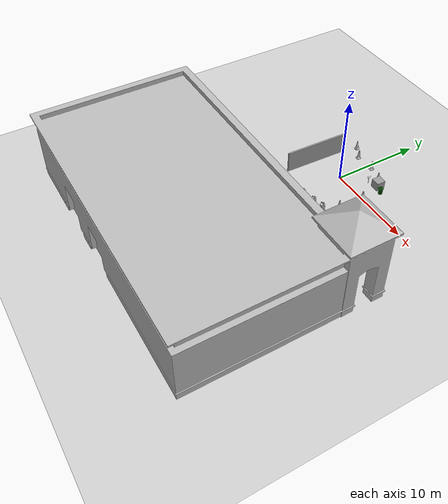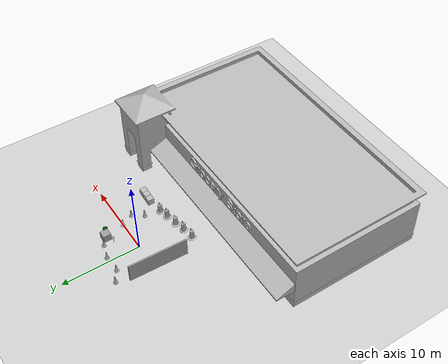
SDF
<sdf version="1.7">
 <world name="default">
  <light name="sun" type="directional">
   <pose>0 0 10 0 -0 0</pose>
   <diffuse>0.8 0.8 0.8 1</diffuse>
   <specular>0.2 0.2 0.2 1</specular>
   <attenuation>
    <range>1000</range>
    <constant>0.9</constant>
    <linear>0.01</linear>
    <quadratic>0.001</quadratic>
   </attenuation>
   <direction>-0.5 0.1 -0.9</direction>
   <spot><inner_angle>0</inner_angle><outer_angle>0</outer_angle><falloff>0</falloff></spot>
  </light>
  <model name="ground_plane">
   <static>1</static>
   <link name="link">
    <collision name="collision">
     <geometry><plane><normal>0 0 1</normal><size>100 100</size></plane></geometry>
     <surface>
      <contact><collide_bitmask>65535</collide_bitmask></contact>
      <friction><ode><mu>100</mu><mu2>50</mu2></ode></friction>
     </surface>
    </collision>
    <visual name="visual">
     <cast_shadows>0</cast_shadows>
     <geometry><plane><normal>0 0 1</normal><size>100 100</size></plane></geometry>
     <material>
      <script><uri>file://media/materials/scripts/gazebo.material</uri><name>Gazebo/Grey</name></script>
     </material>
    </visual>
   </link>
  </model>
  <gravity>0 0 -9.8</gravity>
  <magnetic_field>6e-06 2.3e-05 -4.2e-05</magnetic_field>
  <atmosphere type="adiabatic"/>
  <physics type="ode">
   <max_step_size>0.001</max_step_size>
   <real_time_factor>1</real_time_factor>
   <real_time_update_rate>1000</real_time_update_rate>
  </physics>
  <scene><ambient>0.4 0.4 0.4 1</ambient><background>0.7 0.7 0.7 1</background><shadows>1</shadows></scene>
  <spherical_coordinates>
   <surface_model>EARTH_WGS84</surface_model>
   <latitude_deg>0</latitude_deg>
   <longitude_deg>0</longitude_deg>
   <elevation>0</elevation>
   <heading_deg>0</heading_deg>
  </spherical_coordinates>
  <model name="unit_box">
   <pose>3.28371 2.66326 0.499995 -1e-05 0 -1e-06</pose>
   <link name="link">
    <inertial>
     <mass>1</mass>
     <inertia>
      <ixx>0.166667</ixx>
      <ixy>0</ixy>
      <ixz>0</ixz>
      <iyy>0.166667</iyy>
      <iyz>0</iyz>
      <izz>0.166667</izz>
     </inertia>
    </inertial>
    <collision name="collision"><geometry><box><size>1 1 1</size></box></geometry></collision>
    <visual name="visual">
     <geometry><box><size>1 1 1</size></box></geometry>
     <material>
      <script><name>Gazebo/Grey</name><uri>file://media/materials/scripts/gazebo.material</uri></script>
     </material>
    </visual>
   </link>
  </model>
  <model name="Mailbox">
   <link name="link">
    <collision name="collision">
     <geometry><mesh><uri>model://mailbox/meshes/mailbox.dae</uri></mesh></geometry>
    </collision>
    <visual name="visual">
     <geometry><mesh><uri>model://mailbox/meshes/mailbox.dae</uri></mesh></geometry>
     <material>
      <script>
       <uri>model://mailbox/materials/scripts</uri>
       <uri>model://mailbox/materials/textures</uri>
       <name>Mailbox/Diffuse</name>
      </script>
     </material>
    </visual>
    <inertial>
     <inertia><ixx>1</ixx><ixy>0</ixy><ixz>0</ixz><iyy>1</iyy><iyz>0</iyz><izz>1</izz></inertia>
     <mass>1</mass>
    </inertial>
   </link>
   <pose>2.25434 2.16385 -1e-05 -6e-06 -0 0</pose>
  </model>
  <model name="first_2015_trash_can">
   <link name="link">
    <inertial>
     <pose>0 0 0.3683 0 -0 0</pose>
     <mass>4.83076</mass>
     <inertia>
      <ixx>0.281534</ixx>
      <ixy>0</ixy>
      <ixz>0</ixz>
      <iyy>0.281534</iyy>
      <iyz>0</iyz>
      <izz>0.126223</izz>
     </inertia>
    </inertial>
    <visual name="visual">
     <geometry><mesh><uri>model://first_2015_trash_can/meshes/trash_can.dae</uri></mesh></geometry>
    </visual>
    <collision name="collision">
     <geometry><mesh><uri>model://first_2015_trash_can/meshes/trash_can.dae</uri></mesh></geometry>
    </collision>
   </link>
   <pose>4.21054 2.25859 1e-06 7e-06 -7e-06 -0.00235</pose>
  </model>
  <model name="grey_wall">
   <static>1</static>
   <link name="link">
    <pose>0 0 1.4 0 -0 0</pose>
    <collision name="collision"><geometry><box><size>7.5 0.2 2.8</size></box></geometry></collision>
    <visual name="visual">
     <cast_shadows>0</cast_shadows>
     <geometry><box><size>7.5 0.2 2.8</size></box></geometry>
     <material>
      <script>
       <uri>model://grey_wall/materials/scripts</uri>
       <uri>model://grey_wall/materials/textures</uri>
       <name>vrc/grey_wall</name>
      </script>
     </material>
    </visual>
   </link>
   <pose>-3.78977 -0.554598 -0.345897 0 -0 1.53879</pose>
  </model>
  <model name="grocery_store">
   <static>1</static>
   <link name="link">
    <collision name="collision">
     <pose>0 0 4.04605 0 -0 0</pose>
     <geometry><box><size>32.1985 17.5425 8.09209</size></box></geometry>
    </collision>
    <visual name="visual">
     <pose>0 -1.96155 0 0 -0 0</pose>
     <geometry><mesh><uri>model://grocery_store/meshes/grocery_store.dae</uri></mesh></geometry>
    </visual>
   </link>
   <pose>-0.819565 -18.8877 0 0 -0 0</pose>
  </model>
  <model name="number1">
   <pose>7.0827 -4.59984 0.4 0 -0 0</pose>
   <static>1</static>
   <link name="link">
    <visual name="visual">
     <geometry><mesh><uri>model://number1/meshes/number.dae</uri></mesh></geometry>
     <material>
      <script>
       <uri>model://number1/materials/scripts</uri>
       <uri>model://number1/materials/textures</uri>
       <name>Number/One</name>
      </script>
     </material>
    </visual>
   </link>
  </model>
  <model name="number2">
   <pose>6.28028 -4.56015 0.4 0 -0 0</pose>
   <static>1</static>
   <link name="link">
    <visual name="visual">
     <geometry><mesh><uri>model://number1/meshes/number.dae</uri></mesh></geometry>
     <material>
      <script>
       <uri>model://number2/materials/scripts</uri>
       <uri>model://number2/materials/textures</uri>
       <name>Number/Two</name>
      </script>
     </material>
    </visual>
   </link>
  </model>
  <model name="number4">
   <pose>5.44622 -4.51949 0.4 0 -0 0</pose>
   <static>1</static>
   <link name="link">
    <visual name="visual">
     <geometry><mesh><uri>model://number1/meshes/number.dae</uri></mesh></geometry>
     <material>
      <script>
       <uri>model://number4/materials/scripts</uri>
       <uri>model://number4/materials/textures</uri>
       <name>Number/Four</name>
      </script>
     </material>
    </visual>
   </link>
  </model>
  <model name="Construction Cone">
   <link name="link">
    <collision name="collision">
     <geometry>
      <mesh><scale>10 10 10</scale><uri>model://construction_cone/meshes/construction_cone.dae</uri></mesh>
     </geometry>
    </collision>
    <visual name="visual">
     <geometry>
      <mesh><scale>10 10 10</scale><uri>model://construction_cone/meshes/construction_cone.dae</uri></mesh>
     </geometry>
    </visual>
    <inertial>
     <inertia><ixx>1</ixx><ixy>0</ixy><ixz>0</ixz><iyy>1</iyy><iyz>0</iyz><izz>1</izz></inertia>
     <mass>1</mass>
    </inertial>
   </link>
   <pose>3.80395 -2.87568 -0 0 -1e-06 0</pose>
  </model>
  <model name="Construction Barrel">
   <link name="link">
    <inertial>
     <pose>0 0 0.4 0 -0 0</pose>
     <mass>500</mass>
     <inertia><ixx>51.2096</ixx><iyy>51.2096</iyy><izz>25</izz><ixy>0</ixy><ixz>0</ixz><iyz>0</iyz></inertia>
    </inertial>
    <collision name="collision">
     <geometry><mesh><uri>model://construction_barrel/meshes/construction_barrel.dae</uri></mesh></geometry>
    </collision>
    <visual name="visual">
     <geometry><mesh><uri>model://construction_barrel/meshes/construction_barrel.dae</uri></mesh></geometry>
    </visual>
   </link>
   <pose>3.40511 -4.83092 0 0 -0 0</pose>
  </model>
  <model name="Construction Barrel_0">
   <link name="link">
    <inertial>
     <pose>0 0 0.4 0 -0 0</pose>
     <mass>500</mass>
     <inertia><ixx>51.2096</ixx><iyy>51.2096</iyy><izz>25</izz><ixy>0</ixy><ixz>0</ixz><iyz>0</iyz></inertia>
    </inertial>
    <collision name="collision">
     <geometry><mesh><uri>model://construction_barrel/meshes/construction_barrel.dae</uri></mesh></geometry>
    </collision>
    <visual name="visual">
     <geometry><mesh><uri>model://construction_barrel/meshes/construction_barrel.dae</uri></mesh></geometry>
    </visual>
   </link>
   <pose>2.1603 -5.10067 0 0 -0 0</pose>
  </model>
  <model name="Construction Barrel_1">
   <link name="link">
    <inertial>
     <pose>0 0 0.4 0 -0 0</pose>
     <mass>500</mass>
     <inertia><ixx>51.2096</ixx><iyy>51.2096</iyy><izz>25</izz><ixy>0</ixy><ixz>0</ixz><iyz>0</iyz></inertia>
    </inertial>
    <collision name="collision">
     <geometry><mesh><uri>model://construction_barrel/meshes/construction_barrel.dae</uri></mesh></geometry>
    </collision>
    <visual name="visual">
     <geometry><mesh><uri>model://construction_barrel/meshes/construction_barrel.dae</uri></mesh></geometry>
    </visual>
   </link>
   <pose>0.640923 -5.39412 0 0 -0 0</pose>
  </model>
  <model name="Construction Barrel_2">
   <link name="link">
    <inertial>
     <pose>0 0 0.4 0 -0 0</pose>
     <mass>500</mass>
     <inertia><ixx>51.2096</ixx><iyy>51.2096</iyy><izz>25</izz><ixy>0</ixy><ixz>0</ixz><iyz>0</iyz></inertia>
    </inertial>
    <collision name="collision">
     <geometry><mesh><uri>model://construction_barrel/meshes/construction_barrel.dae</uri></mesh></geometry>
    </collision>
    <visual name="visual">
     <geometry><mesh><uri>model://construction_barrel/meshes/construction_barrel.dae</uri></mesh></geometry>
    </visual>
   </link>
   <pose>-0.726764 -5.70778 0 0 -0 0</pose>
  </model>
  <model name="Construction Barrel_3">
   <link name="link">
    <inertial>
     <pose>0 0 0.4 0 -0 0</pose>
     <mass>500</mass>
     <inertia><ixx>51.2096</ixx><iyy>51.2096</iyy><izz>25</izz><ixy>0</ixy><ixz>0</ixz><iyz>0</iyz></inertia>
    </inertial>
    <collision name="collision">
     <geometry><mesh><uri>model://construction_barrel/meshes/construction_barrel.dae</uri></mesh></geometry>
    </collision>
    <visual name="visual">
     <geometry><mesh><uri>model://construction_barrel/meshes/construction_barrel.dae</uri></mesh></geometry>
    </visual>
   </link>
   <pose>-2.25816 -5.9256 0 0 -0 0</pose>
  </model>
  <model name="Construction Cone_0">
   <link name="link">
    <collision name="collision">
     <geometry>
      <mesh><scale>10 10 10</scale><uri>model://construction_cone/meshes/construction_cone.dae</uri></mesh>
     </geometry>
    </collision>
    <visual name="visual">
     <geometry>
      <mesh><scale>10 10 10</scale><uri>model://construction_cone/meshes/construction_cone.dae</uri></mesh>
     </geometry>
    </visual>
    <inertial>
     <inertia><ixx>1</ixx><ixy>0</ixy><ixz>0</ixz><iyy>1</iyy><iyz>0</iyz><izz>1</izz></inertia>
     <mass>1</mass>
    </inertial>
   </link>
   <pose>4.73511 -1.51563 0 0 -0 0</pose>
  </model>
  <model name="Construction Cone_1">
   <link name="link">
    <collision name="collision">
     <geometry>
      <mesh><scale>10 10 10</scale><uri>model://construction_cone/meshes/construction_cone.dae</uri></mesh>
     </geometry>
    </collision>
    <visual name="visual">
     <geometry>
      <mesh><scale>10 10 10</scale><uri>model://construction_cone/meshes/construction_cone.dae</uri></mesh>
     </geometry>
    </visual>
    <inertial>
     <inertia><ixx>1</ixx><ixy>0</ixy><ixz>0</ixz><iyy>1</iyy><iyz>0</iyz><izz>1</izz></inertia>
     <mass>1</mass>
    </inertial>
   </link>
   <pose>3.95159 0.05409 0 0 -0 0</pose>
  </model>
  <model name="Construction Cone_2">
   <link name="link">
    <collision name="collision">
     <geometry>
      <mesh><scale>10 10 10</scale><uri>model://construction_cone/meshes/construction_cone.dae</uri></mesh>
     </geometry>
    </collision>
    <visual name="visual">
     <geometry>
      <mesh><scale>10 10 10</scale><uri>model://construction_cone/meshes/construction_cone.dae</uri></mesh>
     </geometry>
    </visual>
    <inertial>
     <inertia><ixx>1</ixx><ixy>0</ixy><ixz>0</ixz><iyy>1</iyy><iyz>0</iyz><izz>1</izz></inertia>
     <mass>1</mass>
    </inertial>
   </link>
   <pose>2.40595 3.41286 0 0 -0 0</pose>
  </model>
  <model name="Construction Cone_3">
   <link name="link">
    <collision name="collision">
     <geometry>
      <mesh><scale>10 10 10</scale><uri>model://construction_cone/meshes/construction_cone.dae</uri></mesh>
     </geometry>
    </collision>
    <visual name="visual">
     <geometry>
      <mesh><scale>10 10 10</scale><uri>model://construction_cone/meshes/construction_cone.dae</uri></mesh>
     </geometry>
    </visual>
    <inertial>
     <inertia><ixx>1</ixx><ixy>0</ixy><ixz>0</ixz><iyy>1</iyy><iyz>0</iyz><izz>1</izz></inertia>
     <mass>1</mass>
    </inertial>
   </link>
   <pose>0.581362 3.94658 0 0 -0 0</pose>
  </model>
  <model name="Construction Cone_4">
   <link name="link">
    <collision name="collision">
     <geometry>
      <mesh><scale>10 10 10</scale><uri>model://construction_cone/meshes/construction_cone.dae</uri></mesh>
     </geometry>
    </collision>
    <visual name="visual">
     <geometry>
      <mesh><scale>10 10 10</scale><uri>model://construction_cone/meshes/construction_cone.dae</uri></mesh>
     </geometry>
    </visual>
    <inertial>
     <inertia><ixx>1</ixx><ixy>0</ixy><ixz>0</ixz><iyy>1</iyy><iyz>0</iyz><izz>1</izz></inertia>
     <mass>1</mass>
    </inertial>
   </link>
   <pose>-1.6793 3.84679 0 0 -0 0</pose>
  </model>
  <model name="Construction Cone_5">
   <link name="link">
    <collision name="collision">
     <geometry>
      <mesh><scale>10 10 10</scale><uri>model://construction_cone/meshes/construction_cone.dae</uri></mesh>
     </geometry>
    </collision>
    <visual name="visual">
     <geometry>
      <mesh><scale>10 10 10</scale><uri>model://construction_cone/meshes/construction_cone.dae</uri></mesh>
     </geometry>
    </visual>
    <inertial>
     <inertia><ixx>1</ixx><ixy>0</ixy><ixz>0</ixz><iyy>1</iyy><iyz>0</iyz><izz>1</izz></inertia>
     <mass>1</mass>
    </inertial>
   </link>
   <pose>-3.10416 4.71469 0 0 -0 0</pose>
  </model>
 </world>
</sdf>
